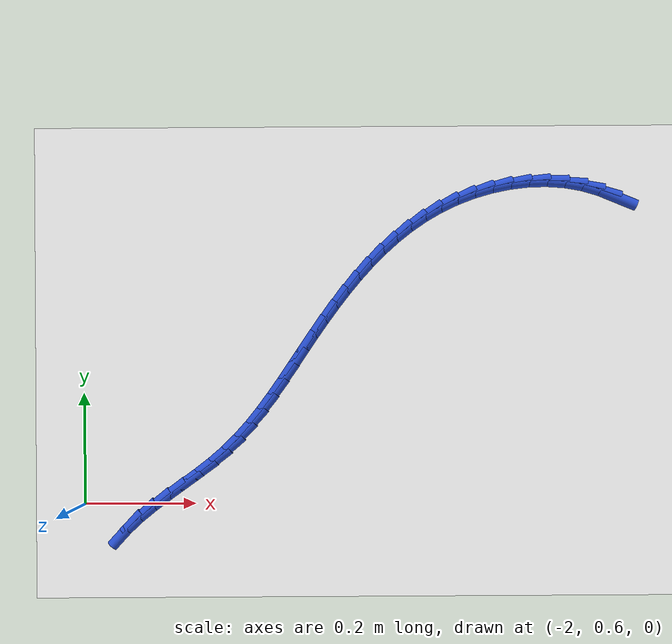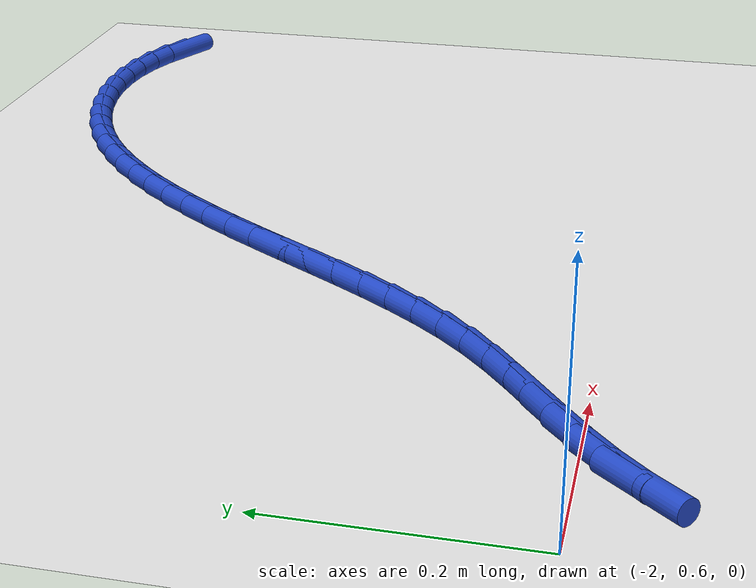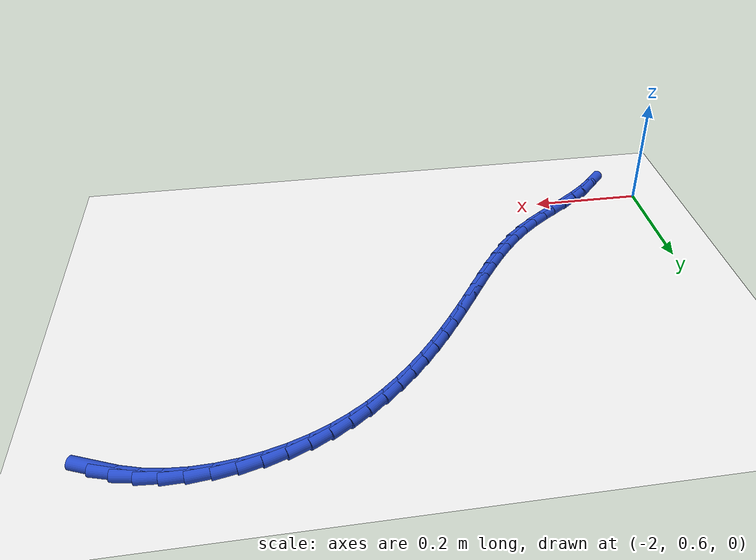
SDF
<sdf version="1.6">
 <world name="default">
  <model name="ground_plane">
   <static>1</static>
   <link name="link">
    <collision name="collision">
     <geometry><plane><normal>0 0 1</normal><size>100 100</size></plane></geometry>
     <surface><friction><ode><mu>100</mu><mu2>50</mu2></ode></friction></surface>
    </collision>
    <visual name="visual">
     <cast_shadows>0</cast_shadows>
     <geometry><plane><normal>0 0 1</normal><size>100 100</size></plane></geometry>
     <material>
      <script><uri>file://media/materials/scripts/gazebo.material</uri><name>Gazebo/WhiteGlow</name></script>
     </material>
    </visual>
   </link>
  </model>
  <model name="line">
   <link name="link_52">
    <pose>-1.044065841417322 1.146270569092961 0.01 0 1.57 -0.393154085487555</pose>
    <collision name="collision">
     <geometry><cylinder><radius>0.01</radius><length>0.08</length></cylinder></geometry>
    </collision>
    <visual name="visual">
     <material>
      <script><name>Gazebo/Blue</name><uri>file://media/materials/scripts/gazebo.material</uri></script>
     </material>
     <geometry><cylinder><radius>0.01</radius><length>0.08</length></cylinder></geometry>
    </visual>
   </link>
   <link name="link_53">
    <pose>-1.0731578219006797 1.1583363729547302 0.01 0 1.57 -0.2874507101214639</pose>
    <collision name="collision">
     <geometry><cylinder><radius>0.01</radius><length>0.08</length></cylinder></geometry>
    </collision>
    <visual name="visual">
     <material>
      <script><name>Gazebo/Blue</name><uri>file://media/materials/scripts/gazebo.material</uri></script>
     </material>
     <geometry><cylinder><radius>0.01</radius><length>0.08</length></cylinder></geometry>
    </visual>
   </link>
   <link name="link_54">
    <pose>-1.1034581520128592 1.1672943197158536 0.01 0 1.57 -0.17479858856976555</pose>
    <collision name="collision">
     <geometry><cylinder><radius>0.01</radius><length>0.08</length></cylinder></geometry>
    </collision>
    <visual name="visual">
     <material>
      <script><name>Gazebo/Blue</name><uri>file://media/materials/scripts/gazebo.material</uri></script>
     </material>
     <geometry><cylinder><radius>0.01</radius><length>0.08</length></cylinder></geometry>
    </visual>
   </link>
   <link name="link_55">
    <pose>-1.1349816903962433 1.1728614054923485 0.01 0 1.57 -0.07052735428449061</pose>
    <collision name="collision">
     <geometry><cylinder><radius>0.01</radius><length>0.08</length></cylinder></geometry>
    </collision>
    <visual name="visual">
     <material>
      <script><name>Gazebo/Blue</name><uri>file://media/materials/scripts/gazebo.material</uri></script>
     </material>
     <geometry><cylinder><radius>0.01</radius><length>0.08</length></cylinder></geometry>
    </visual>
   </link>
   <link name="link_56">
    <pose>-1.1673895521307445 1.1751508434682247 0.01 0 1.57 0.025261658291936773</pose>
    <collision name="collision">
     <geometry><cylinder><radius>0.01</radius><length>0.08</length></cylinder></geometry>
    </collision>
    <visual name="visual">
     <material>
      <script><name>Gazebo/Blue</name><uri>file://media/materials/scripts/gazebo.material</uri></script>
     </material>
     <geometry><cylinder><radius>0.01</radius><length>0.08</length></cylinder></geometry>
    </visual>
   </link>
   <link name="link_57">
    <pose>-1.2003041562350258 1.1743191890718678 0.01 0 1.57 0.11438228202836787</pose>
    <collision name="collision">
     <geometry><cylinder><radius>0.01</radius><length>0.08</length></cylinder></geometry>
    </collision>
    <visual name="visual">
     <material>
      <script><name>Gazebo/Blue</name><uri>file://media/materials/scripts/gazebo.material</uri></script>
     </material>
     <geometry><cylinder><radius>0.01</radius><length>0.08</length></cylinder></geometry>
    </visual>
   </link>
   <link name="link_58">
    <pose>-1.2333479217277517 1.1705229977316642 0.01 0 1.57 0.19871762019774353</pose>
    <collision name="collision">
     <geometry><cylinder><radius>0.01</radius><length>0.08</length></cylinder></geometry>
    </collision>
    <visual name="visual">
     <material>
      <script><name>Gazebo/Blue</name><uri>file://media/materials/scripts/gazebo.material</uri></script>
     </material>
     <geometry><cylinder><radius>0.01</radius><length>0.08</length></cylinder></geometry>
    </visual>
   </link>
   <link name="link_59">
    <pose>-1.2661432676275846 1.1639188248759984 0.01 0 1.57 0.2801482748937279</pose>
    <collision name="collision">
     <geometry><cylinder><radius>0.01</radius><length>0.08</length></cylinder></geometry>
    </collision>
    <visual name="visual">
     <material>
      <script><name>Gazebo/Blue</name><uri>file://media/materials/scripts/gazebo.material</uri></script>
     </material>
     <geometry><cylinder><radius>0.01</radius><length>0.08</length></cylinder></geometry>
    </visual>
   </link>
   <link name="link_60">
    <pose>-1.29831261295319 1.1546632259332577 0.01 0 1.57 0.36055037854988303</pose>
    <collision name="collision">
     <geometry><cylinder><radius>0.01</radius><length>0.08</length></cylinder></geometry>
    </collision>
    <visual name="visual">
     <material>
      <script><name>Gazebo/Blue</name><uri>file://media/materials/scripts/gazebo.material</uri></script>
     </material>
     <geometry><cylinder><radius>0.01</radius><length>0.08</length></cylinder></geometry>
    </visual>
   </link>
   <link name="link_61">
    <pose>-1.3294783767232297 1.1429127563318269 0.01 0 1.57 0.44181163152796715</pose>
    <collision name="collision">
     <geometry><cylinder><radius>0.01</radius><length>0.08</length></cylinder></geometry>
    </collision>
    <visual name="visual">
     <material>
      <script><name>Gazebo/Blue</name><uri>file://media/materials/scripts/gazebo.material</uri></script>
     </material>
     <geometry><cylinder><radius>0.01</radius><length>0.08</length></cylinder></geometry>
    </visual>
   </link>
   <link name="link_62">
    <pose>-1.3592644331069408 1.1288240836118564 0.01 0 1.57 0.5231185889847798</pose>
    <collision name="collision">
     <geometry><cylinder><radius>0.01</radius><length>0.08</length></cylinder></geometry>
    </collision>
    <visual name="visual">
     <material>
      <script><name>Gazebo/Blue</name><uri>file://media/materials/scripts/gazebo.material</uri></script>
     </material>
     <geometry><cylinder><radius>0.01</radius><length>0.08</length></cylinder></geometry>
    </visual>
   </link>
   <link name="link_63">
    <pose>-1.3874551028551296 1.1125662368860205 0.01 0 1.57 0.5994811732689038</pose>
    <collision name="collision">
     <geometry><cylinder><radius>0.01</radius><length>0.08</length></cylinder></geometry>
    </collision>
    <visual name="visual">
     <material>
      <script><name>Gazebo/Blue</name><uri>file://media/materials/scripts/gazebo.material</uri></script>
     </material>
     <geometry><cylinder><radius>0.01</radius><length>0.08</length></cylinder></geometry>
    </visual>
   </link>
   <link name="link_64">
    <pose>-1.4141382478238604 1.0943316315264588 0.01 0 1.57 0.6693801383520134</pose>
    <collision name="collision">
     <geometry><cylinder><radius>0.01</radius><length>0.08</length></cylinder></geometry>
    </collision>
    <visual name="visual">
     <material>
      <script><name>Gazebo/Blue</name><uri>file://media/materials/scripts/gazebo.material</uri></script>
     </material>
     <geometry><cylinder><radius>0.01</radius><length>0.08</length></cylinder></geometry>
    </visual>
   </link>
   <link name="link_65">
    <pose>-1.4394355043166307 1.0743152850503819 0.01 0 1.57 0.7322024890332466</pose>
    <collision name="collision">
     <geometry><cylinder><radius>0.01</radius><length>0.08</length></cylinder></geometry>
    </collision>
    <visual name="visual">
     <material>
      <script><name>Gazebo/Blue</name><uri>file://media/materials/scripts/gazebo.material</uri></script>
     </material>
     <geometry><cylinder><radius>0.01</radius><length>0.08</length></cylinder></geometry>
    </visual>
   </link>
   <link name="link_66">
    <pose>-1.463468508636936 1.0527122149749988 0.01 0 1.57 0.7876731367345937</pose>
    <collision name="collision">
     <geometry><cylinder><radius>0.01</radius><length>0.08</length></cylinder></geometry>
    </collision>
    <visual name="visual">
     <material>
      <script><name>Gazebo/Blue</name><uri>file://media/materials/scripts/gazebo.material</uri></script>
     </material>
     <geometry><cylinder><radius>0.01</radius><length>0.08</length></cylinder></geometry>
    </visual>
   </link>
   <link name="link_67">
    <pose>-1.486358897088272 1.0297174388175208 0.01 0 1.57 0.8357682828071806</pose>
    <collision name="collision">
     <geometry><cylinder><radius>0.01</radius><length>0.08</length></cylinder></geometry>
    </collision>
    <visual name="visual">
     <material>
      <script><name>Gazebo/Blue</name><uri>file://media/materials/scripts/gazebo.material</uri></script>
     </material>
     <geometry><cylinder><radius>0.01</radius><length>0.08</length></cylinder></geometry>
    </visual>
   </link>
   <link name="link_68">
    <pose>-1.5082283059741353 1.0055259740951574 0.01 0 1.57 0.8766255502183988</pose>
    <collision name="collision">
     <geometry><cylinder><radius>0.01</radius><length>0.08</length></cylinder></geometry>
    </collision>
    <visual name="visual">
     <material>
      <script><name>Gazebo/Blue</name><uri>file://media/materials/scripts/gazebo.material</uri></script>
     </material>
     <geometry><cylinder><radius>0.01</radius><length>0.08</length></cylinder></geometry>
    </visual>
   </link>
   <link name="link_69">
    <pose>-1.5291983715980224 0.9803328383251187 0.01 0 1.57 0.9104652956956031</pose>
    <collision name="collision">
     <geometry><cylinder><radius>0.01</radius><length>0.08</length></cylinder></geometry>
    </collision>
    <visual name="visual">
     <material>
      <script><name>Gazebo/Blue</name><uri>file://media/materials/scripts/gazebo.material</uri></script>
     </material>
     <geometry><cylinder><radius>0.01</radius><length>0.08</length></cylinder></geometry>
    </visual>
   </link>
   <link name="link_70">
    <pose>-1.5493907302634293 0.9543330490246162 0.01 0 1.57 0.9375285910287304</pose>
    <collision name="collision">
     <geometry><cylinder><radius>0.01</radius><length>0.08</length></cylinder></geometry>
    </collision>
    <visual name="visual">
     <material>
      <script><name>Gazebo/Blue</name><uri>file://media/materials/scripts/gazebo.material</uri></script>
     </material>
     <geometry><cylinder><radius>0.01</radius><length>0.08</length></cylinder></geometry>
    </visual>
   </link>
   <link name="link_71">
    <pose>-1.5689270182738515 0.927721623710859 0.01 0 1.57 0.9580315768626112</pose>
    <collision name="collision">
     <geometry><cylinder><radius>0.01</radius><length>0.08</length></cylinder></geometry>
    </collision>
    <visual name="visual">
     <material>
      <script><name>Gazebo/Blue</name><uri>file://media/materials/scripts/gazebo.material</uri></script>
     </material>
     <geometry><cylinder><radius>0.01</radius><length>0.08</length></cylinder></geometry>
    </visual>
   </link>
   <link name="link_72">
    <pose>-1.5879288719327858 0.9006935799010574 0.01 0 1.57 0.9721211932132059</pose>
    <collision name="collision">
     <geometry><cylinder><radius>0.01</radius><length>0.08</length></cylinder></geometry>
    </collision>
    <visual name="visual">
     <material>
      <script><name>Gazebo/Blue</name><uri>file://media/materials/scripts/gazebo.material</uri></script>
     </material>
     <geometry><cylinder><radius>0.01</radius><length>0.08</length></cylinder></geometry>
    </visual>
   </link>
   <link name="link_73">
    <pose>-1.6065183378968515 0.8734440340795327 0.01 0 1.57 0.9783896076067643</pose>
    <collision name="collision">
     <geometry><cylinder><radius>0.01</radius><length>0.08</length></cylinder></geometry>
    </collision>
    <visual name="visual">
     <material>
      <script><name>Gazebo/Blue</name><uri>file://media/materials/scripts/gazebo.material</uri></script>
     </material>
     <geometry><cylinder><radius>0.01</radius><length>0.08</length></cylinder></geometry>
    </visual>
   </link>
   <link name="link_74">
    <pose>-1.6248681004407655 0.8461803152824333 0.01 0 1.57 0.9738761532393932</pose>
    <collision name="collision">
     <geometry><cylinder><radius>0.01</radius><length>0.08</length></cylinder></geometry>
    </collision>
    <visual name="visual">
     <material>
      <script><name>Gazebo/Blue</name><uri>file://media/materials/scripts/gazebo.material</uri></script>
     </material>
     <geometry><cylinder><radius>0.01</radius><length>0.08</length></cylinder></geometry>
    </visual>
   </link>
   <link name="link_75">
    <pose>-1.6432497238521666 0.8191335999804368 0.01 0 1.57 0.9580685158001965</pose>
    <collision name="collision">
     <geometry><cylinder><radius>0.01</radius><length>0.08</length></cylinder></geometry>
    </collision>
    <visual name="visual">
     <material>
      <script><name>Gazebo/Blue</name><uri>file://media/materials/scripts/gazebo.material</uri></script>
     </material>
     <geometry><cylinder><radius>0.01</radius><length>0.08</length></cylinder></geometry>
    </visual>
   </link>
   <link name="link_76">
    <pose>-1.6619462080156817 0.792537822629809 0.01 0 1.57 0.9307332477358957</pose>
    <collision name="collision">
     <geometry><cylinder><radius>0.01</radius><length>0.08</length></cylinder></geometry>
    </collision>
    <visual name="visual">
     <material>
      <script><name>Gazebo/Blue</name><uri>file://media/materials/scripts/gazebo.material</uri></script>
     </material>
     <geometry><cylinder><radius>0.01</radius><length>0.08</length></cylinder></geometry>
    </visual>
   </link>
   <link name="link_77">
    <pose>-1.6812405528159375 0.7666269176868151 0.01 0 1.57 0.8916421656154006</pose>
    <collision name="collision">
     <geometry><cylinder><radius>0.01</radius><length>0.08</length></cylinder></geometry>
    </collision>
    <visual name="visual">
     <material>
      <script><name>Gazebo/Blue</name><uri>file://media/materials/scripts/gazebo.material</uri></script>
     </material>
     <geometry><cylinder><radius>0.01</radius><length>0.08</length></cylinder></geometry>
    </visual>
   </link>
   <link name="link_78">
    <pose>-1.7014157581375609 0.741634819607721 0.01 0 1.57 0.8406843584865529</pose>
    <collision name="collision">
     <geometry><cylinder><radius>0.01</radius><length>0.08</length></cylinder></geometry>
    </collision>
    <visual name="visual">
     <material>
      <script><name>Gazebo/Blue</name><uri>file://media/materials/scripts/gazebo.material</uri></script>
     </material>
     <geometry><cylinder><radius>0.01</radius><length>0.08</length></cylinder></geometry>
    </visual>
   </link>
   <link name="link_79">
    <pose>-1.722754823865179 0.7177954628487917 0.01 0 1.57 0.7780319107576059</pose>
    <collision name="collision">
     <geometry><cylinder><radius>0.01</radius><length>0.08</length></cylinder></geometry>
    </collision>
    <visual name="visual">
     <material>
      <script><name>Gazebo/Blue</name><uri>file://media/materials/scripts/gazebo.material</uri></script>
     </material>
     <geometry><cylinder><radius>0.01</radius><length>0.08</length></cylinder></geometry>
    </visual>
   </link>
   <link name="link_80">
    <pose>-1.7455407498834195 0.6953427818662934 0.01 0 1.57 0.7081023459111364</pose>
    <collision name="collision">
     <geometry><cylinder><radius>0.01</radius><length>0.08</length></cylinder></geometry>
    </collision>
    <visual name="visual">
     <material>
      <script><name>Gazebo/Blue</name><uri>file://media/materials/scripts/gazebo.material</uri></script>
     </material>
     <geometry><cylinder><radius>0.01</radius><length>0.08</length></cylinder></geometry>
    </visual>
   </link>
   <link name="link_81">
    <pose>-1.7699647760100492 0.6744300901823261 0.01 0 1.57 0.6545696513120449</pose>
    <collision name="collision">
     <geometry><cylinder><radius>0.01</radius><length>0.08</length></cylinder></geometry>
    </collision>
    <visual name="visual">
     <material>
      <script><name>Gazebo/Blue</name><uri>file://media/materials/scripts/gazebo.material</uri></script>
     </material>
     <geometry><cylinder><radius>0.01</radius><length>0.08</length></cylinder></geometry>
    </visual>
   </link>
   <link name="link_82">
    <pose>-1.7956540650638966 0.6547150999517265 0.01 0 1.57 0.6255986368360611</pose>
    <collision name="collision">
     <geometry><cylinder><radius>0.01</radius><length>0.08</length></cylinder></geometry>
    </collision>
    <visual name="visual">
     <material>
      <script><name>Gazebo/Blue</name><uri>file://media/materials/scripts/gazebo.material</uri></script>
     </material>
     <geometry><cylinder><radius>0.01</radius><length>0.08</length></cylinder></geometry>
    </visual>
   </link>
   <link name="link_83">
    <pose>-1.8220215866670624 0.635667331927526 0.01 0 1.57 0.6205645698747805</pose>
    <collision name="collision">
     <geometry><cylinder><radius>0.01</radius><length>0.08</length></cylinder></geometry>
    </collision>
    <visual name="visual">
     <material>
      <script><name>Gazebo/Blue</name><uri>file://media/materials/scripts/gazebo.material</uri></script>
     </material>
     <geometry><cylinder><radius>0.01</radius><length>0.08</length></cylinder></geometry>
    </visual>
   </link>
   <link name="link_84">
    <pose>-1.8484798985308575 0.616755944955515 0.01 0 1.57 0.6394112817374145</pose>
    <collision name="collision">
     <geometry><cylinder><radius>0.01</radius><length>0.08</length></cylinder></geometry>
    </collision>
    <visual name="visual">
     <material>
      <script><name>Gazebo/Blue</name><uri>file://media/materials/scripts/gazebo.material</uri></script>
     </material>
     <geometry><cylinder><radius>0.01</radius><length>0.08</length></cylinder></geometry>
    </visual>
   </link>
   <link name="link_85">
    <pose>-1.874441558366595 0.597450097881485 0.01 0 1.57 0.6827552861111479</pose>
    <collision name="collision">
     <geometry><cylinder><radius>0.01</radius><length>0.08</length></cylinder></geometry>
    </collision>
    <visual name="visual">
     <material>
      <script><name>Gazebo/Blue</name><uri>file://media/materials/scripts/gazebo.material</uri></script>
     </material>
     <geometry><cylinder><radius>0.01</radius><length>0.08</length></cylinder></geometry>
    </visual>
   </link>
   <link name="link_86">
    <pose>-1.8993191238855862 0.5772189495512272 0.01 0 1.57 0.7508582629793781</pose>
    <collision name="collision">
     <geometry><cylinder><radius>0.01</radius><length>0.08</length></cylinder></geometry>
    </collision>
    <visual name="visual">
     <material>
      <script><name>Gazebo/Blue</name><uri>file://media/materials/scripts/gazebo.material</uri></script>
     </material>
     <geometry><cylinder><radius>0.01</radius><length>0.08</length></cylinder></geometry>
    </visual>
   </link>
   <link name="link_87">
    <pose>-1.9225419538274273 0.5555473844802972 0.01 0 1.57 0.8291608039495155</pose>
    <collision name="collision">
     <geometry><cylinder><radius>0.01</radius><length>0.08</length></cylinder></geometry>
    </collision>
    <visual name="visual">
     <material>
      <script><name>Gazebo/Blue</name><uri>file://media/materials/scripts/gazebo.material</uri></script>
     </material>
     <geometry><cylinder><radius>0.01</radius><length>0.08</length></cylinder></geometry>
    </visual>
   </link>
  </model>
 </world>
</sdf>
